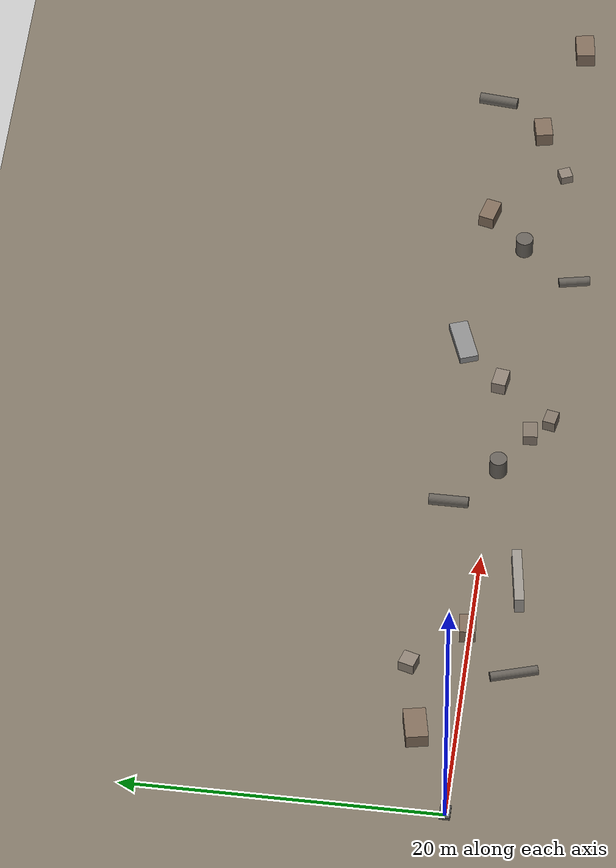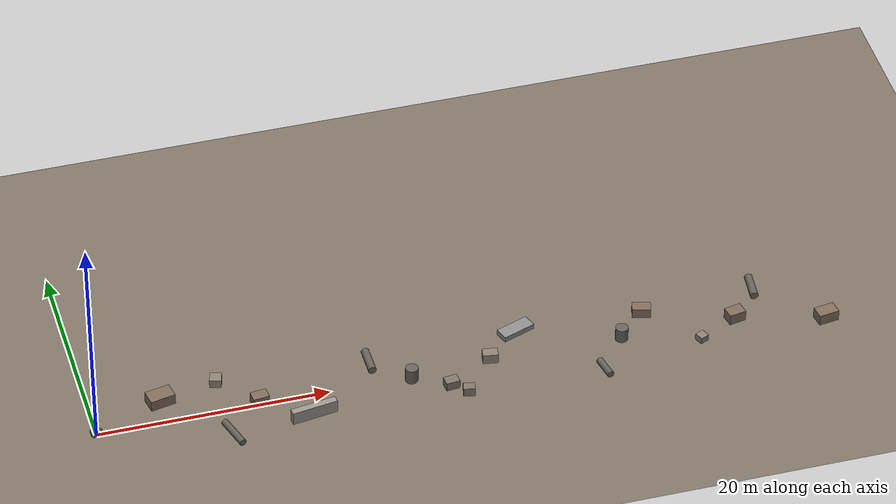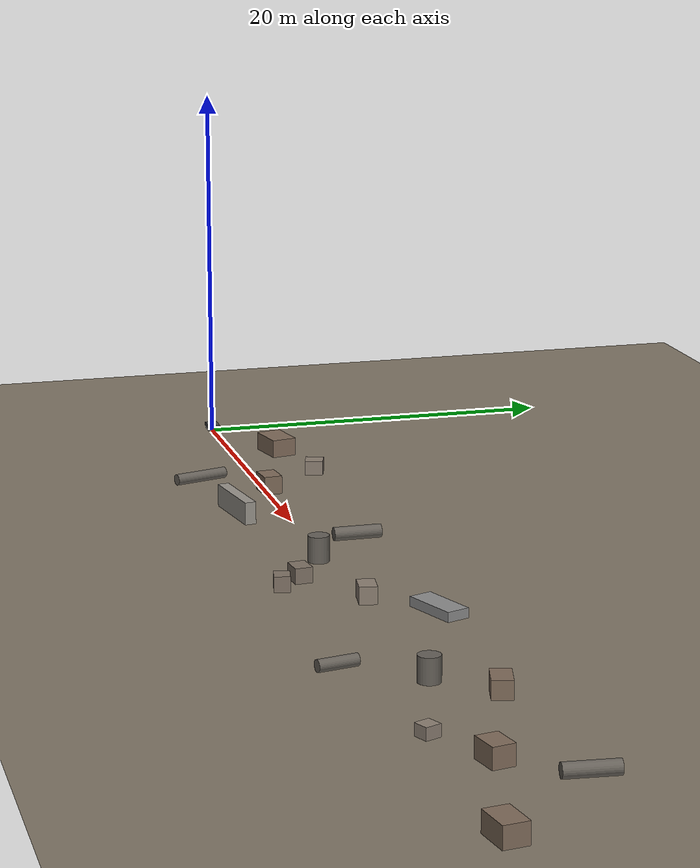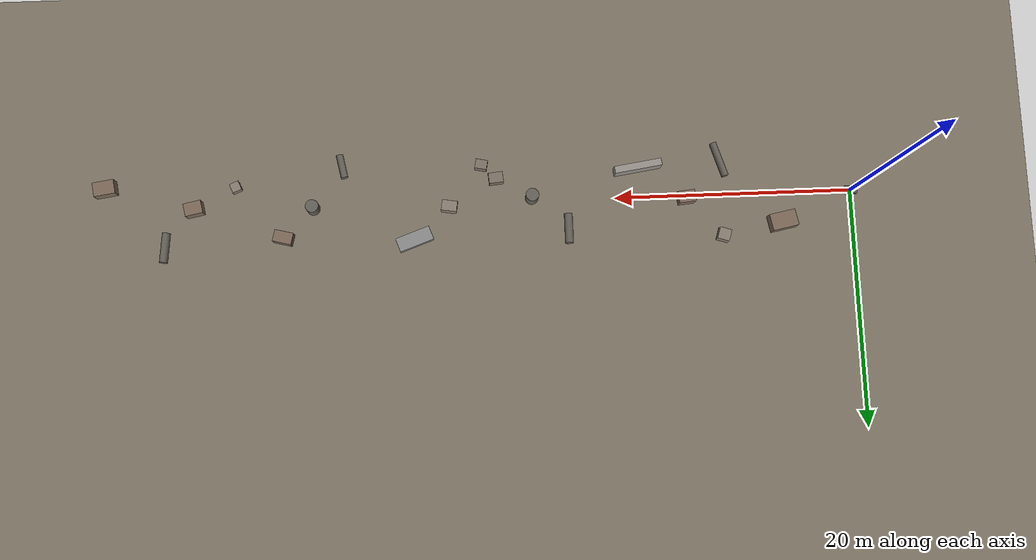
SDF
<?xml version="1.0"?>
<sdf version="1.9">
  <world name="phase1_region3_earthquake">

    <plugin filename="gz-sim-physics-system"
            name="gz::sim::systems::Physics">
    </plugin>

    <plugin filename="gz-sim-user-commands-system"
            name="gz::sim::systems::UserCommands">
    </plugin>

    <plugin filename="gz-sim-scene-broadcaster-system"
            name="gz::sim::systems::SceneBroadcaster">
    </plugin>

    <plugin filename="gz-sim-sensors-system"
            name="gz::sim::systems::Sensors">
      <render_engine>ogre2</render_engine>
    </plugin>

    <plugin filename="gz-sim-imu-system"
            name="gz::sim::systems::Imu">
    </plugin>

    <plugin filename="gz-sim-navsat-system"
            name="gz::sim::systems::NavSat">
    </plugin>

    <plugin filename="gz-sim-contact-system"
            name="gz::sim::systems::Contact">
    </plugin>

    <gravity>0 0 -9.8</gravity>
    <magnetic_field>5.5645e-6 2.28758e-5 -4.23884e-5</magnetic_field>

    <spherical_coordinates>
      <surface_model>EARTH_WGS84</surface_model>
      <world_frame_orientation>ENU</world_frame_orientation>
      <latitude_deg>42.4129540624</latitude_deg>
      <longitude_deg>-83.1360653105</longitude_deg>
      <elevation>190.0</elevation>
      <heading_deg>0</heading_deg>
    </spherical_coordinates>

    <physics name="1ms" type="ode">
      <max_step_size>0.001</max_step_size>
      <real_time_factor>1.0</real_time_factor>
    </physics>

    <scene>
      <ambient>0.35 0.32 0.3 1</ambient>
      <background>0.75 0.7 0.62 1</background>  <!-- dusty haze, not clear sky -->
      <shadows>true</shadows>
    </scene>

    <light type="directional" name="sun">
      <cast_shadows>true</cast_shadows>
      <pose>0 0 100 0 0 0</pose>
      <diffuse>0.7 0.68 0.6 1</diffuse>
      <specular>0.2 0.2 0.2 1</specular>
      <attenuation>
        <range>1000</range>
        <constant>0.9</constant>
        <linear>0.01</linear>
        <quadratic>0.001</quadratic>
      </attenuation>
      <direction>-0.5 0.1 -0.9</direction>
    </light>

    <!-- ══════════════════════════════════════════════════════════
         GROUND PLANE — same 200x200m pad as Region 2.
         ══════════════════════════════════════════════════════════ -->
    <model name="ground_plane">
      <static>true</static>
      <link name="link">
        <collision name="collision">
          <geometry>
            <plane>
              <normal>0 0 1</normal>
              <size>200 200</size>
            </plane>
          </geometry>
          <surface>
            <friction>
              <ode><mu>1.0</mu><mu2>1.0</mu2></ode>
            </friction>
          </surface>
        </collision>

        <visual name="visual">
          <geometry>
            <plane>
              <normal>0 0 1</normal>
              <size>200 200</size>
            </plane>
          </geometry>
          <material>
            <ambient>0.5 0.46 0.4 1</ambient>
            <diffuse>0.5 0.46 0.4 1</diffuse>  <!-- cracked-earth tan, not grass -->
          </material>
        </visual>
      </link>
    </model>

    <!-- Collapsed building rubble, right off the start -->
    <model name="rubble_box_1">
      <static>true</static>
      <pose>6 2.5 0.5 0 0 0.2</pose>
      <link name="link">
        <collision name="c"><geometry><box><size>2.2 1.4 1.0</size></box></geometry></collision>
        <visual name="v"><geometry><box><size>2.2 1.4 1.0</size></box></geometry>
          <material><ambient>0.5 0.42 0.35 1</ambient><diffuse>0.5 0.42 0.35 1</diffuse></material>
        </visual>
      </link>
    </model>

    <!-- Fallen pillar — cylinder rolled 90 deg so it lies on the ground -->
    <model name="fallen_pillar_1">
      <static>true</static>
      <pose>11 -3 0.3 1.5708 0 0.3</pose>
      <link name="link">
        <collision name="c"><geometry><cylinder><radius>0.3</radius><length>3.0</length></cylinder></geometry></collision>
        <visual name="v"><geometry><cylinder><radius>0.3</radius><length>3.0</length></cylinder></geometry>
          <material><ambient>0.4 0.38 0.35 1</ambient><diffuse>0.4 0.38 0.35 1</diffuse></material>
        </visual>
      </link>
    </model>

    <!-- Small debris block -->
    <model name="rubble_box_2">
      <static>true</static>
      <pose>11 3.5 0.4 0 0 -0.3</pose>
      <link name="link">
        <collision name="c"><geometry><box><size>1.0 1.0 0.8</size></box></geometry></collision>
        <visual name="v"><geometry><box><size>1.0 1.0 0.8</size></box></geometry>
          <material><ambient>0.55 0.5 0.45 1</ambient><diffuse>0.55 0.5 0.45 1</diffuse></material>
        </visual>
      </link>
    </model>

    <!-- Directly on the path — forces a real detour, not a shortcut -->
    <model name="middle_1">
      <static>true</static>
      <pose>14 0.2 0.5 0 0 0.1</pose>
      <link name="link">
        <collision name="c"><geometry><box><size>1.4 1.0 1.0</size></box></geometry></collision>
        <visual name="v"><geometry><box><size>1.4 1.0 1.0</size></box></geometry>
          <material><ambient>0.5 0.42 0.35 1</ambient><diffuse>0.5 0.42 0.35 1</diffuse></material>
        </visual>
      </link>
    </model>

    <!-- Collapsed wall segment — long and thin -->
    <model name="collapsed_wall">
      <static>true</static>
      <pose>18 -2.5 0.6 0 0 0.15</pose>
      <link name="link">
        <collision name="c"><geometry><box><size>4.0 0.6 1.2</size></box></geometry></collision>
        <visual name="v"><geometry><box><size>4.0 0.6 1.2</size></box></geometry>
          <material><ambient>0.6 0.58 0.55 1</ambient><diffuse>0.6 0.58 0.55 1</diffuse></material>
        </visual>
      </link>
    </model>

    <!-- Second fallen pillar, opposite side -->
    <model name="fallen_pillar_2">
      <static>true</static>
      <pose>24 2.5 0.35 1.5708 0 0</pose>
      <link name="link">
        <collision name="c"><geometry><cylinder><radius>0.35</radius><length>2.5</length></cylinder></geometry></collision>
        <visual name="v"><geometry><cylinder><radius>0.35</radius><length>2.5</length></cylinder></geometry>
          <material><ambient>0.4 0.38 0.35 1</ambient><diffuse>0.4 0.38 0.35 1</diffuse></material>
        </visual>
      </link>
    </model>

    <!-- Directly on the path -->
    <model name="middle_2">
      <static>true</static>
      <pose>27 -0.3 0.4 0 0 0</pose>
      <link name="link">
        <collision name="c"><geometry><cylinder><radius>0.55</radius><length>1.8</length></cylinder></geometry></collision>
        <visual name="v"><geometry><cylinder><radius>0.55</radius><length>1.8</length></cylinder></geometry>
          <material><ambient>0.4 0.38 0.35 1</ambient><diffuse>0.4 0.38 0.35 1</diffuse></material>
        </visual>
      </link>
    </model>

    <!-- Rubble cluster — two blocks close together, collapsed room -->
    <model name="rubble_cluster_a">
      <static>true</static>
      <pose>30 -2 0.4 0 0 0.1</pose>
      <link name="link">
        <collision name="c"><geometry><box><size>1.2 0.9 0.8</size></box></geometry></collision>
        <visual name="v"><geometry><box><size>1.2 0.9 0.8</size></box></geometry>
          <material><ambient>0.5 0.45 0.4 1</ambient><diffuse>0.5 0.45 0.4 1</diffuse></material>
        </visual>
      </link>
    </model>

    <model name="rubble_cluster_b">
      <static>true</static>
      <pose>31.2 -3.2 0.4 0 0 -0.2</pose>
      <link name="link">
        <collision name="c"><geometry><box><size>1.0 0.8 0.8</size></box></geometry></collision>
        <visual name="v"><geometry><box><size>1.0 0.8 0.8</size></box></geometry>
          <material><ambient>0.5 0.45 0.4 1</ambient><diffuse>0.5 0.45 0.4 1</diffuse></material>
        </visual>
      </link>
    </model>

    <!-- Directly on the path -->
    <model name="middle_3">
      <static>true</static>
      <pose>34 0.3 0.45 0 0 -0.15</pose>
      <link name="link">
        <collision name="c"><geometry><box><size>1.3 0.9 0.9</size></box></geometry></collision>
        <visual name="v"><geometry><box><size>1.3 0.9 0.9</size></box></geometry>
          <material><ambient>0.55 0.5 0.45 1</ambient><diffuse>0.55 0.5 0.45 1</diffuse></material>
        </visual>
      </link>
    </model>

    <!-- Fallen concrete slab -->
    <model name="tilted_slab">
      <static>true</static>
      <pose>37 3 0.4 0 0 0.35</pose>
      <link name="link">
        <collision name="c"><geometry><box><size>3.0 1.2 0.5</size></box></geometry></collision>
        <visual name="v"><geometry><box><size>3.0 1.2 0.5</size></box></geometry>
          <material><ambient>0.55 0.55 0.55 1</ambient><diffuse>0.55 0.55 0.55 1</diffuse></material>
        </visual>
      </link>
    </model>

    <!-- Third fallen pillar -->
    <model name="fallen_pillar_3">
      <static>true</static>
      <pose>43 -3.5 0.3 1.5708 0 0.2</pose>
      <link name="link">
        <collision name="c"><geometry><cylinder><radius>0.3</radius><length>2.0</length></cylinder></geometry></collision>
        <visual name="v"><geometry><cylinder><radius>0.3</radius><length>2.0</length></cylinder></geometry>
          <material><ambient>0.4 0.38 0.35 1</ambient><diffuse>0.4 0.38 0.35 1</diffuse></material>
        </visual>
      </link>
    </model>

    <!-- Directly on the path -->
    <model name="middle_4">
      <static>true</static>
      <pose>45.5 0.0 0.4 0 0 0</pose>
      <link name="link">
        <collision name="c"><geometry><cylinder><radius>0.55</radius><length>1.6</length></cylinder></geometry></collision>
        <visual name="v"><geometry><cylinder><radius>0.55</radius><length>1.6</length></cylinder></geometry>
          <material><ambient>0.4 0.38 0.35 1</ambient><diffuse>0.4 0.38 0.35 1</diffuse></material>
        </visual>
      </link>
    </model>

    <!-- Rubble block -->
    <model name="rubble_box_3">
      <static>true</static>
      <pose>48 2.5 0.45 0 0 -0.25</pose>
      <link name="link">
        <collision name="c"><geometry><box><size>1.6 1.0 0.9</size></box></geometry></collision>
        <visual name="v"><geometry><box><size>1.6 1.0 0.9</size></box></geometry>
          <material><ambient>0.5 0.42 0.35 1</ambient><diffuse>0.5 0.42 0.35 1</diffuse></material>
        </visual>
      </link>
    </model>

    <!-- Scattered small debris -->
    <model name="debris_small_1">
      <static>true</static>
      <pose>52 -2 0.3 0 0 0.4</pose>
      <link name="link">
        <collision name="c"><geometry><box><size>0.8 0.8 0.6</size></box></geometry></collision>
        <visual name="v"><geometry><box><size>0.8 0.8 0.6</size></box></geometry>
          <material><ambient>0.55 0.5 0.45 1</ambient><diffuse>0.55 0.5 0.45 1</diffuse></material>
        </visual>
      </link>
    </model>

    <!-- Directly on the path -->
    <model name="middle_5">
      <static>true</static>
      <pose>55.5 -0.2 0.5 0 0 0.2</pose>
      <link name="link">
        <collision name="c"><geometry><box><size>1.5 1.1 1.0</size></box></geometry></collision>
        <visual name="v"><geometry><box><size>1.5 1.1 1.0</size></box></geometry>
          <material><ambient>0.5 0.42 0.35 1</ambient><diffuse>0.5 0.42 0.35 1</diffuse></material>
        </visual>
      </link>
    </model>

    <!-- Fourth fallen pillar, near the destination -->
    <model name="fallen_pillar_4">
      <static>true</static>
      <pose>58 3 0.35 1.5708 0 -0.1</pose>
      <link name="link">
        <collision name="c"><geometry><cylinder><radius>0.35</radius><length>2.5</length></cylinder></geometry></collision>
        <visual name="v"><geometry><cylinder><radius>0.35</radius><length>2.5</length></cylinder></geometry>
          <material><ambient>0.4 0.38 0.35 1</ambient><diffuse>0.4 0.38 0.35 1</diffuse></material>
        </visual>
      </link>
    </model>

    <!-- Final rubble pile before the destination -->
    <model name="final_rubble">
      <static>true</static>
      <pose>63 -2.2 0.5 0 0 0.15</pose>
      <link name="link">
        <collision name="c"><geometry><box><size>1.8 1.2 1.0</size></box></geometry></collision>
        <visual name="v"><geometry><box><size>1.8 1.2 1.0</size></box></geometry>
          <material><ambient>0.5 0.42 0.35 1</ambient><diffuse>0.5 0.42 0.35 1</diffuse></material>
        </visual>
      </link>
    </model>

    <!-- ══════════════════════════════════════════════════════════
         ROBOT
         ══════════════════════════════════════════════════════════ -->
    <include>
      <uri>model://husky_leader</uri>
      <name>husky</name>
      <pose>0 0 0.3 0 0 0</pose>
    </include>

  </world>
</sdf>

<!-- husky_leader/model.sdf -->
<sdf version="1.9">
  <model name="husky_leader">

    <!--
      static = false means physics applies (gravity, collisions, forces).
      If true, the robot would float in place and ignore cmd_vel.
    -->
    <static>false</static>

    <link name="base_link">
      <inertial>
        <mass>50.0</mass>
        <inertia>
          <ixx>1.0417</ixx>
          <iyy>1.5042</iyy>
          <izz>2.1042</izz>
          <ixy>0</ixy>
          <ixz>0</ixz>
          <iyz>0</iyz>
        </inertia>
      </inertial>

      <!--
        Collision: the shape Gazebo uses to detect contacts.
        Simpler than visual — a box is fine for a rectangular robot.
      -->
      <collision name="chassis_collision">
        <geometry>
          <box><size>0.99 0.67 0.20</size></box>
        </geometry>
      </collision>

      <visual name="chassis_visual">
        <geometry>
          <box><size>0.99 0.67 0.20</size></box>
        </geometry>
        <material>
          <ambient>0.2 0.2 0.2 1</ambient>
          <diffuse>0.3 0.3 0.3 1</diffuse>  <!-- dark grey, like a real Husky -->
        </material>
      </visual>

      <sensor name="imu_sensor" type="imu">
        <always_on>true</always_on>
        <update_rate>100</update_rate>  <!-- 100 Hz, typical for IMU -->
        <topic>imu/data</topic>
        <imu>
          <angular_velocity>
            <x><noise type="gaussian"><mean>0</mean><stddev>0.001</stddev></noise></x>
            <y><noise type="gaussian"><mean>0</mean><stddev>0.001</stddev></noise></y>
            <z><noise type="gaussian"><mean>0</mean><stddev>0.001</stddev></noise></z>
          </angular_velocity>
          <linear_acceleration>
            <x><noise type="gaussian"><mean>0</mean><stddev>0.01</stddev></noise></x>
            <y><noise type="gaussian"><mean>0</mean><stddev>0.01</stddev></noise></y>
            <z><noise type="gaussian"><mean>0</mean><stddev>0.01</stddev></noise></z>
          </linear_acceleration>
        </imu>
      </sensor>

      <sensor name="navsat_sensor" type="navsat">
        <always_on>true</always_on>
        <update_rate>5</update_rate>  <!-- 5 Hz, typical for GPS modules -->
        <topic>navsat</topic>
        <navsat>
          <position_sensing>
            <horizontal>
              <!-- Noise here is applied directly to lat/lon (degrees), not meters.
                   0.5 m of real-world GPS error ≈ 0.5 / 111320 deg ≈ 0.0000045 deg. -->
              <noise type="gaussian"><mean>0</mean><stddev>0.0000045</stddev></noise>
            </horizontal>
            <vertical>
              <!-- Altitude stays in meters, so 1.0 m stddev is fine as-is. -->
              <noise type="gaussian"><mean>0</mean><stddev>1.0</stddev></noise>
            </vertical>
          </position_sensing>
        </navsat>
      </sensor>

    </link>

    <link name="lidar_link">
      <pose relative_to="base_link">0 0 0.20 0 0 0</pose>
      <!-- x y z  roll pitch yaw — 0.20m above chassis center -->

      <inertial>
        <mass>0.5</mass>
        <inertia>
          <ixx>0.001</ixx><iyy>0.001</iyy><izz>0.001</izz>
          <ixy>0</ixy><ixz>0</ixz><iyz>0</iyz>
        </inertia>
      </inertial>

      <collision name="lidar_collision">
        <geometry><cylinder><radius>0.05</radius><length>0.05</length></cylinder></geometry>
      </collision>

      <visual name="lidar_visual">
        <geometry><cylinder><radius>0.05</radius><length>0.05</length></cylinder></geometry>
        <material>
          <ambient>0.0 0.0 0.8 1</ambient>
          <diffuse>0.0 0.0 0.8 1</diffuse>  <!-- blue cylinder -->
        </material>
      </visual>

      <sensor name="lidar_sensor" type="gpu_lidar">
        <always_on>true</always_on>
        <update_rate>10</update_rate>  <!-- 10 Hz scan rate -->
        <topic>scan</topic>
        <lidar>
          <scan>
            <horizontal>
              <samples>360</samples>        <!-- one ray per degree -->
              <resolution>1</resolution>
              <min_angle>-3.14159</min_angle>
              <max_angle>3.14159</max_angle>
            </horizontal>
          </scan>
          <range>
            <min>0.15</min>   <!-- ignore anything closer than 15 cm -->
            <max>30.0</max>   <!-- 30 m max range -->
            <resolution>0.01</resolution>
          </range>
          <noise>
            <type>gaussian</type>
            <mean>0</mean>
            <stddev>0.01</stddev>
          </noise>
        </lidar>
      </sensor>

    </link>

    <!-- Fixed joint: bolt the lidar mount to the chassis -->
    <joint name="lidar_joint" type="fixed">
      <parent>base_link</parent>
      <child>lidar_link</child>
    </joint>

    <link name="camera_link">
      <!-- Mounted at front of chassis, looking forward -->
      <pose relative_to="base_link">0.49 0 0.15 0 0 0</pose>

      <inertial>
        <mass>0.2</mass>
        <inertia>
          <ixx>0.0001</ixx><iyy>0.0001</iyy><izz>0.0001</izz>
          <ixy>0</ixy><ixz>0</ixz><iyz>0</iyz>
        </inertia>
      </inertial>

      <collision name="camera_collision">
        <geometry><box><size>0.04 0.08 0.04</size></box></geometry>
      </collision>

      <visual name="camera_visual">
        <geometry><box><size>0.04 0.08 0.04</size></box></geometry>
        <material>
          <ambient>0.8 0.0 0.0 1</ambient>
          <diffuse>0.8 0.0 0.0 1</diffuse>  <!-- red box -->
        </material>
      </visual>

      <sensor name="camera_sensor" type="camera">
        <always_on>true</always_on>
        <update_rate>30</update_rate>
        <topic>camera/image</topic>
        <camera>
          <horizontal_fov>1.3962634</horizontal_fov>
          <image>
            <width>640</width>
            <height>480</height>
            <format>R8G8B8</format>
          </image>
          <clip>
            <near>0.1</near>
            <far>100.0</far>
          </clip>
          <noise>
            <type>gaussian</type>
            <mean>0</mean>
            <stddev>0.005</stddev>
          </noise>
        </camera>
      </sensor>

    </link>

    <joint name="camera_joint" type="fixed">
      <parent>base_link</parent>
      <child>camera_link</child>
    </joint>

    <!-- ── FRONT LEFT WHEEL ── -->
    <link name="front_left_wheel">
      <pose relative_to="base_link">0.256 0.2855 -0.1 -1.5708 0 0</pose>

      <inertial>
        <mass>2.5</mass>
        <inertia>
          <ixx>0.0073</ixx><iyy>0.0073</iyy><izz>0.0036</izz>
          <ixy>0</ixy><ixz>0</ixz><iyz>0</iyz>
        </inertia>
      </inertial>

      <collision name="collision">
        <geometry><cylinder><radius>0.17</radius><length>0.08</length></cylinder></geometry>
        <surface>
          <friction>
            <ode><mu>1.0</mu><mu2>0.5</mu2></ode>
          </friction>
          <contact>
            <ode><kp>1e6</kp><kd>500</kd></ode>
          </contact>
        </surface>
      </collision>

      <visual name="visual">
        <geometry><cylinder><radius>0.17</radius><length>0.08</length></cylinder></geometry>
        <material>
          <ambient>0.1 0.1 0.1 1</ambient>
          <diffuse>0.1 0.1 0.1 1</diffuse>  <!-- black wheels -->
        </material>
      </visual>
    </link>

    <joint name="front_left_wheel_joint" type="revolute">
      <parent>base_link</parent>
      <child>front_left_wheel</child>
      <axis>
        <xyz>0 0 1</xyz>  <!-- rotation axis: Z in wheel frame = Y in world (because of the roll) -->
        <limit><lower>-1e16</lower><upper>1e16</upper></limit>  <!-- unlimited rotation -->
      </axis>
    </joint>

    <!-- ── FRONT RIGHT WHEEL ── -->
    <link name="front_right_wheel">
      <pose relative_to="base_link">0.256 -0.2855 -0.1 -1.5708 0 0</pose>

      <inertial>
        <mass>2.5</mass>
        <inertia>
          <ixx>0.0073</ixx><iyy>0.0073</iyy><izz>0.0036</izz>
          <ixy>0</ixy><ixz>0</ixz><iyz>0</iyz>
        </inertia>
      </inertial>

      <collision name="collision">
        <geometry><cylinder><radius>0.17</radius><length>0.08</length></cylinder></geometry>
        <surface>
          <friction>
            <ode><mu>1.0</mu><mu2>0.5</mu2></ode>
          </friction>
          <contact>
            <ode><kp>1e6</kp><kd>500</kd></ode>
          </contact>
        </surface>
      </collision>

      <visual name="visual">
        <geometry><cylinder><radius>0.17</radius><length>0.08</length></cylinder></geometry>
        <material>
          <ambient>0.1 0.1 0.1 1</ambient>
          <diffuse>0.1 0.1 0.1 1</diffuse>
        </material>
      </visual>
    </link>

    <joint name="front_right_wheel_joint" type="revolute">
      <parent>base_link</parent>
      <child>front_right_wheel</child>
      <axis>
        <xyz>0 0 1</xyz>
        <limit><lower>-1e16</lower><upper>1e16</upper></limit>
      </axis>
    </joint>

    <!-- ── REAR LEFT WHEEL ── -->
    <link name="rear_left_wheel">
      <pose relative_to="base_link">-0.256 0.2855 -0.1 -1.5708 0 0</pose>

      <inertial>
        <mass>2.5</mass>
        <inertia>
          <ixx>0.0073</ixx><iyy>0.0073</iyy><izz>0.0036</izz>
          <ixy>0</ixy><ixz>0</ixz><iyz>0</iyz>
        </inertia>
      </inertial>

      <collision name="collision">
        <geometry><cylinder><radius>0.17</radius><length>0.08</length></cylinder></geometry>
        <surface>
          <friction>
            <ode><mu>1.0</mu><mu2>0.5</mu2></ode>
          </friction>
          <contact>
            <ode><kp>1e6</kp><kd>500</kd></ode>
          </contact>
        </surface>
      </collision>

      <visual name="visual">
        <geometry><cylinder><radius>0.17</radius><length>0.08</length></cylinder></geometry>
        <material>
          <ambient>0.1 0.1 0.1 1</ambient>
          <diffuse>0.1 0.1 0.1 1</diffuse>
        </material>
      </visual>
    </link>

    <joint name="rear_left_wheel_joint" type="revolute">
      <parent>base_link</parent>
      <child>rear_left_wheel</child>
      <axis>
        <xyz>0 0 1</xyz>
        <limit><lower>-1e16</lower><upper>1e16</upper></limit>
      </axis>
    </joint>

    <!-- ── REAR RIGHT WHEEL ── -->
    <link name="rear_right_wheel">
      <pose relative_to="base_link">-0.256 -0.2855 -0.1 -1.5708 0 0</pose>

      <inertial>
        <mass>2.5</mass>
        <inertia>
          <ixx>0.0073</ixx><iyy>0.0073</iyy><izz>0.0036</izz>
          <ixy>0</ixy><ixz>0</ixz><iyz>0</iyz>
        </inertia>
      </inertial>

      <collision name="collision">
        <geometry><cylinder><radius>0.17</radius><length>0.08</length></cylinder></geometry>
        <surface>
          <friction>
            <ode><mu>1.0</mu><mu2>0.5</mu2></ode>
          </friction>
          <contact>
            <ode><kp>1e6</kp><kd>500</kd></ode>
          </contact>
        </surface>
      </collision>

      <visual name="visual">
        <geometry><cylinder><radius>0.17</radius><length>0.08</length></cylinder></geometry>
        <material>
          <ambient>0.1 0.1 0.1 1</ambient>
          <diffuse>0.1 0.1 0.1 1</diffuse>
        </material>
      </visual>
    </link>

    <joint name="rear_right_wheel_joint" type="revolute">
      <parent>base_link</parent>
      <child>rear_right_wheel</child>
      <axis>
        <xyz>0 0 1</xyz>
        <limit><lower>-1e16</lower><upper>1e16</upper></limit>
      </axis>
    </joint>

    <plugin filename="gz-sim-diff-drive-system"
            name="gz::sim::systems::DiffDrive">
      <left_joint>front_left_wheel_joint</left_joint>
      <left_joint>rear_left_wheel_joint</left_joint>
      <right_joint>front_right_wheel_joint</right_joint>
      <right_joint>rear_right_wheel_joint</right_joint>
      <wheel_separation>0.571</wheel_separation>
      <wheel_radius>0.17</wheel_radius>
      <max_linear_acceleration>1.0</max_linear_acceleration>
      <max_angular_acceleration>2.0</max_angular_acceleration>
      <max_linear_velocity>2.0</max_linear_velocity>
      <min_linear_velocity>-2.0</min_linear_velocity>
      <max_angular_velocity>2.0</max_angular_velocity>
      <min_angular_velocity>-2.0</min_angular_velocity>
      <topic>cmd_vel</topic>
      <odom_topic>odom</odom_topic>
      <tf_topic>tf</tf_topic>
      <odom_publish_frequency>50</odom_publish_frequency>
    </plugin>

    <!--
      JointStatePublisher: publishes joint positions + velocities.
      Needed by robot_state_publisher to know wheel angles for TF.
    -->
    <plugin filename="gz-sim-joint-state-publisher-system"
            name="gz::sim::systems::JointStatePublisher">
      <topic>joint_states</topic>
    </plugin>

  </model>
</sdf>
